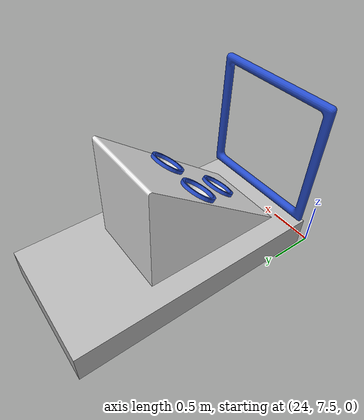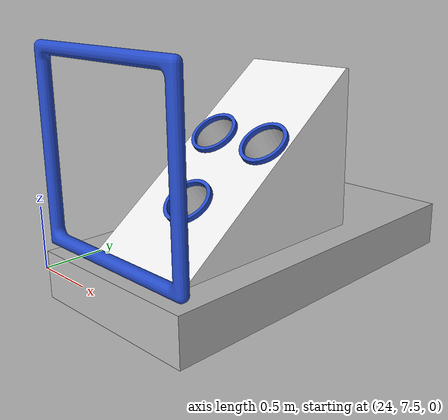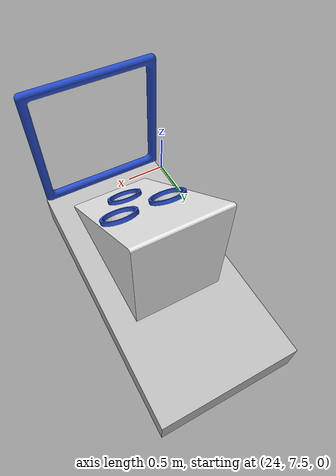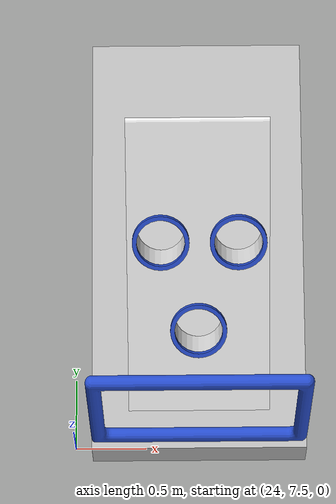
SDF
<sdf version="1.7">
 <world name="default">
  <model name="Frame">
   <static>1</static>
   <pose>24.876 9.48322 -0.007552 1.57 -0 0</pose>
   <link name="Base">
    <collision name="body_collision"><geometry><box><size>1 1 1</size></box></geometry></collision>
    <visual name="base">
     <pose>0 0 0.5 0 -0 0</pose>
     <geometry>
      <mesh><uri>model://task6_model/meshes/Czesc1_do_wiaderek.stl</uri><scale>0.001 0.001 0.001</scale></mesh>
     </geometry>
     <material>
      <script>
       <uri>model://task6_model/materials/scripts</uri>
       <uri>model://task6_model/materials/textures</uri>
       <name>DockBase/Image</name>
      </script>
     </material>
    </visual>
   </link>
   <link name="Frame">
    <pose>0 1 1.5 0 -0 0</pose>
    <collision name="body_collision"><geometry><box><size>1 1 1</size></box></geometry></collision>
    <visual name="frame">
     <pose>0 0 0.5 0 -0 0</pose>
     <geometry>
      <mesh><uri>model://task6_model/meshes/Czesc2_do_wiaderek.stl</uri><scale>0.001 0.001 0.001</scale></mesh>
     </geometry>
     <material>
      <script><uri>file://media/materials/scripts/gazebo.material</uri><name>Gazebo/Blue</name></script>
     </material>
    </visual>
   </link>
   <link name="Main Box">
    <pose>0 0 0 0 -1.57 0</pose>
    <collision name="body_collision"><geometry><box><size>1 1 1</size></box></geometry></collision>
    <visual name="main_box">
     <pose>0 0 0.5 0 -0 0</pose>
     <geometry>
      <mesh><uri>model://task6_model/meshes/Czesc3_wiaderka.stl</uri><scale>0.0001 0.0001 0.0001</scale></mesh>
     </geometry>
     <material>
      <script><uri>file://media/materials/scripts/gazebo.material</uri><name>Gazebo/White</name></script>
     </material>
    </visual>
   </link>
   <link name="Buckets">
    <pose>0 0 0 0 -1.57 0</pose>
    <collision name="body_collision"><geometry><box><size>1 1 1</size></box></geometry></collision>
    <visual name="buckets">
     <pose>0 0 0.5 0 -0 0</pose>
     <geometry>
      <mesh><uri>model://task6_model/meshes/Czesc4_wiaderkav1.stl</uri><scale>1e-05 1e-05 1e-05</scale></mesh>
     </geometry>
     <material>
      <script><uri>file://media/materials/scripts/gazebo.material</uri><name>Gazebo/Blue</name></script>
     </material>
    </visual>
   </link>
  </model>
 </world>
</sdf>
